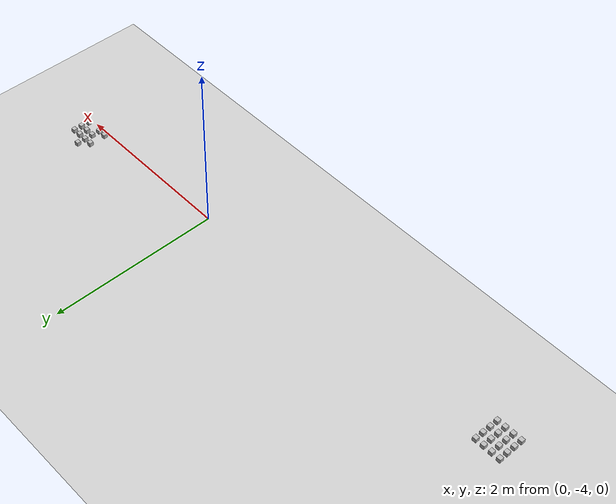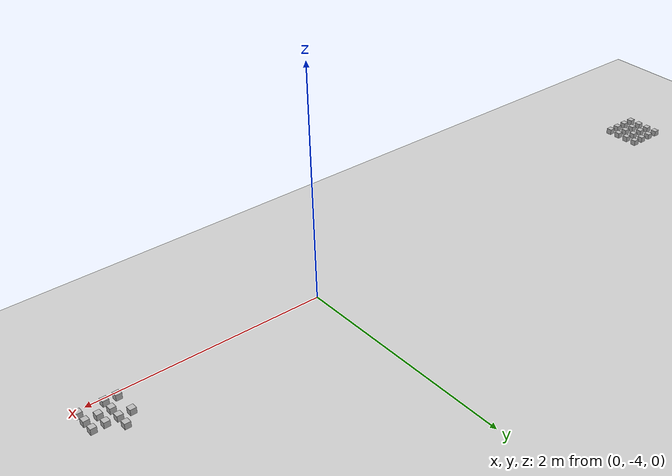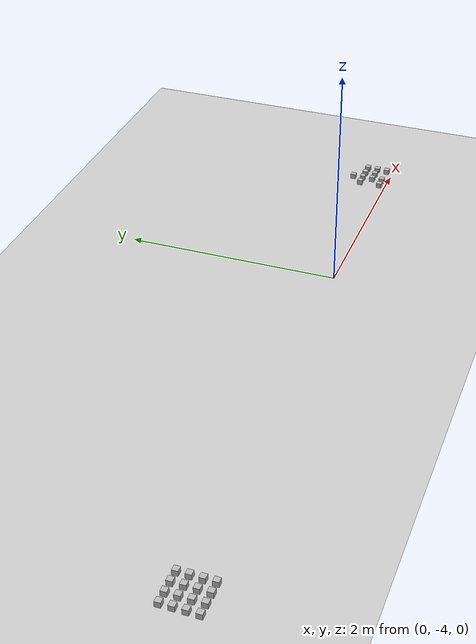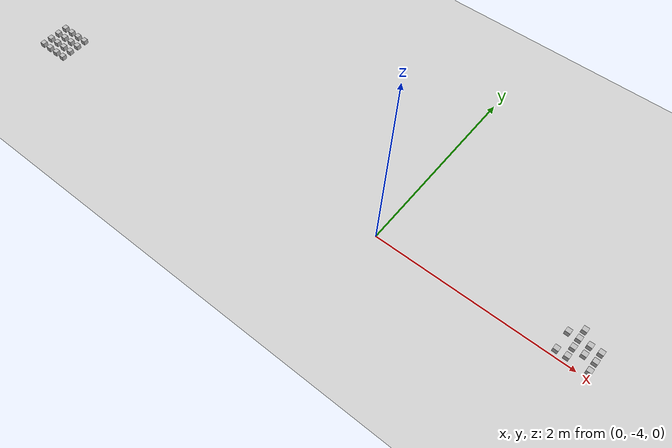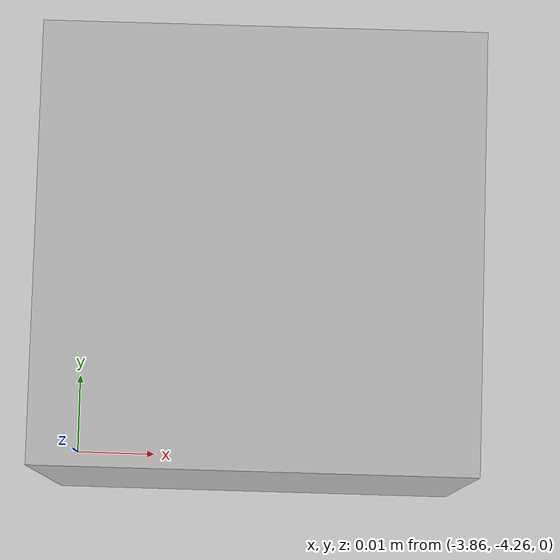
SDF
<sdf version="1.6">
 <world name="default">
  <model name="ground_plane">
   <static>1</static>
   <link name="link">
    <collision name="collision">
     <geometry><plane><normal>0 0 1</normal><size>100 100</size></plane></geometry>
     <surface><friction><ode><mu>100</mu><mu2>50</mu2></ode></friction></surface>
    </collision>
    <visual name="visual">
     <cast_shadows>0</cast_shadows>
     <geometry><plane><normal>0 0 1</normal><size>100 100</size></plane></geometry>
     <material>
      <script><uri>file://media/materials/scripts/gazebo.material</uri><name>Gazebo/Grey</name></script>
     </material>
    </visual>
   </link>
  </model>
  <light name="sun" type="directional">
   <pose>0 0 10 0 -0 0</pose>
   <diffuse>0.8 0.8 0.8 1</diffuse>
   <specular>0.1 0.1 0.1 1</specular>
   <attenuation>
    <range>1000</range>
    <constant>0.9</constant>
    <linear>0.01</linear>
    <quadratic>0.001</quadratic>
   </attenuation>
   <direction>-0.5 0.5 -1</direction>
  </light>
  <plugin name="SetupWorld" filename="libgazebo_plugins.so"/>
  <gravity>0 0 -9.8</gravity>
  <magnetic_field>6e-06 2.3e-05 -4.2e-05</magnetic_field>
  <atmosphere type="adiabatic"/>
  <physics name="default_physics" default="0" type="ode">
   <max_step_size>0.001</max_step_size>
   <real_time_factor>1</real_time_factor>
   <real_time_update_rate>1000</real_time_update_rate>
  </physics>
  <scene><ambient>0.4 0.4 0.4 1</ambient><background>0.7 0.7 0.7 1</background><shadows>1</shadows></scene>
  <spherical_coordinates>
   <surface_model>EARTH_WGS84</surface_model>
   <latitude_deg>0</latitude_deg>
   <longitude_deg>0</longitude_deg>
   <elevation>0</elevation>
   <heading_deg>0</heading_deg>
  </spherical_coordinates>
  <model name="at16">
   <static>0</static>
   <link name="link">
    <inertial>
     <mass>0.01</mass>
     <inertia><ixx>4e-05</ixx><ixy>0</ixy><ixz>0</ixz><iyy>4e-05</iyy><iyz>0</iyz><izz>4e-05</izz></inertia>
    </inertial>
    <visual name="visual">
     <geometry><box><size>0.05 0.05 0.05</size></box></geometry>
     <material>
      <script>
       <uri>model://at0/materials/scripts</uri>
       <uri>model://at0/materials/textures</uri>
       <name>at0/Diffuse</name>
      </script>
     </material>
    </visual>
    <collision name="collision">
     <geometry><box><size>0.05 0.05 0.05</size></box></geometry>
     <surface><friction><ode><mu>0.8</mu><mu2>0.7</mu2></ode></friction></surface>
    </collision>
   </link>
   <pose>-4.13691 -4.33941 0.025 0 -0 0</pose>
  </model>
  <model name="at17">
   <static>0</static>
   <link name="link">
    <inertial>
     <mass>0.01</mass>
     <inertia><ixx>4e-05</ixx><ixy>0</ixy><ixz>0</ixz><iyy>4e-05</iyy><iyz>0</iyz><izz>4e-05</izz></inertia>
    </inertial>
    <visual name="visual">
     <geometry><box><size>0.05 0.05 0.05</size></box></geometry>
     <material>
      <script>
       <uri>model://at0/materials/scripts</uri>
       <uri>model://at0/materials/textures</uri>
       <name>at0/Diffuse</name>
      </script>
     </material>
    </visual>
    <collision name="collision">
     <geometry><box><size>0.05 0.05 0.05</size></box></geometry>
     <surface><friction><ode><mu>0.8</mu><mu2>0.7</mu2></ode></friction></surface>
    </collision>
   </link>
   <pose>-4.03691 -4.33941 0.025 0 -0 0</pose>
  </model>
  <model name="at18">
   <static>0</static>
   <link name="link">
    <inertial>
     <mass>0.01</mass>
     <inertia><ixx>4e-05</ixx><ixy>0</ixy><ixz>0</ixz><iyy>4e-05</iyy><iyz>0</iyz><izz>4e-05</izz></inertia>
    </inertial>
    <visual name="visual">
     <geometry><box><size>0.05 0.05 0.05</size></box></geometry>
     <material>
      <script>
       <uri>model://at0/materials/scripts</uri>
       <uri>model://at0/materials/textures</uri>
       <name>at0/Diffuse</name>
      </script>
     </material>
    </visual>
    <collision name="collision">
     <geometry><box><size>0.05 0.05 0.05</size></box></geometry>
     <surface><friction><ode><mu>0.8</mu><mu2>0.7</mu2></ode></friction></surface>
    </collision>
   </link>
   <pose>-3.93691 -4.33941 0.025 0 -0 0</pose>
  </model>
  <model name="at19">
   <static>0</static>
   <link name="link">
    <inertial>
     <mass>0.01</mass>
     <inertia><ixx>4e-05</ixx><ixy>0</ixy><ixz>0</ixz><iyy>4e-05</iyy><iyz>0</iyz><izz>4e-05</izz></inertia>
    </inertial>
    <visual name="visual">
     <geometry><box><size>0.05 0.05 0.05</size></box></geometry>
     <material>
      <script>
       <uri>model://at0/materials/scripts</uri>
       <uri>model://at0/materials/textures</uri>
       <name>at0/Diffuse</name>
      </script>
     </material>
    </visual>
    <collision name="collision">
     <geometry><box><size>0.05 0.05 0.05</size></box></geometry>
     <surface><friction><ode><mu>0.8</mu><mu2>0.7</mu2></ode></friction></surface>
    </collision>
   </link>
   <pose>-3.83691 -4.33941 0.025 0 -0 0</pose>
  </model>
  <model name="at20">
   <static>0</static>
   <link name="link">
    <inertial>
     <mass>0.01</mass>
     <inertia><ixx>4e-05</ixx><ixy>0</ixy><ixz>0</ixz><iyy>4e-05</iyy><iyz>0</iyz><izz>4e-05</izz></inertia>
    </inertial>
    <visual name="visual">
     <geometry><box><size>0.05 0.05 0.05</size></box></geometry>
     <material>
      <script>
       <uri>model://at0/materials/scripts</uri>
       <uri>model://at0/materials/textures</uri>
       <name>at0/Diffuse</name>
      </script>
     </material>
    </visual>
    <collision name="collision">
     <geometry><box><size>0.05 0.05 0.05</size></box></geometry>
     <surface><friction><ode><mu>0.8</mu><mu2>0.7</mu2></ode></friction></surface>
    </collision>
   </link>
   <pose>-4.13691 -4.23941 0.025 0 -0 0</pose>
  </model>
  <model name="at21">
   <static>0</static>
   <link name="link">
    <inertial>
     <mass>0.01</mass>
     <inertia><ixx>4e-05</ixx><ixy>0</ixy><ixz>0</ixz><iyy>4e-05</iyy><iyz>0</iyz><izz>4e-05</izz></inertia>
    </inertial>
    <visual name="visual">
     <geometry><box><size>0.05 0.05 0.05</size></box></geometry>
     <material>
      <script>
       <uri>model://at0/materials/scripts</uri>
       <uri>model://at0/materials/textures</uri>
       <name>at0/Diffuse</name>
      </script>
     </material>
    </visual>
    <collision name="collision">
     <geometry><box><size>0.05 0.05 0.05</size></box></geometry>
     <surface><friction><ode><mu>0.8</mu><mu2>0.7</mu2></ode></friction></surface>
    </collision>
   </link>
   <pose>-4.03691 -4.23941 0.025 0 -0 0</pose>
  </model>
  <model name="at22">
   <static>0</static>
   <link name="link">
    <inertial>
     <mass>0.01</mass>
     <inertia><ixx>4e-05</ixx><ixy>0</ixy><ixz>0</ixz><iyy>4e-05</iyy><iyz>0</iyz><izz>4e-05</izz></inertia>
    </inertial>
    <visual name="visual">
     <geometry><box><size>0.05 0.05 0.05</size></box></geometry>
     <material>
      <script>
       <uri>model://at0/materials/scripts</uri>
       <uri>model://at0/materials/textures</uri>
       <name>at0/Diffuse</name>
      </script>
     </material>
    </visual>
    <collision name="collision">
     <geometry><box><size>0.05 0.05 0.05</size></box></geometry>
     <surface><friction><ode><mu>0.8</mu><mu2>0.7</mu2></ode></friction></surface>
    </collision>
   </link>
   <pose>-3.93691 -4.23941 0.025 0 -0 0</pose>
  </model>
  <model name="at23">
   <static>0</static>
   <link name="link">
    <inertial>
     <mass>0.01</mass>
     <inertia><ixx>4e-05</ixx><ixy>0</ixy><ixz>0</ixz><iyy>4e-05</iyy><iyz>0</iyz><izz>4e-05</izz></inertia>
    </inertial>
    <visual name="visual">
     <geometry><box><size>0.05 0.05 0.05</size></box></geometry>
     <material>
      <script>
       <uri>model://at0/materials/scripts</uri>
       <uri>model://at0/materials/textures</uri>
       <name>at0/Diffuse</name>
      </script>
     </material>
    </visual>
    <collision name="collision">
     <geometry><box><size>0.05 0.05 0.05</size></box></geometry>
     <surface><friction><ode><mu>0.8</mu><mu2>0.7</mu2></ode></friction></surface>
    </collision>
   </link>
   <pose>-3.83691 -4.23941 0.025 0 -0 0</pose>
  </model>
  <model name="at24">
   <static>0</static>
   <link name="link">
    <inertial>
     <mass>0.01</mass>
     <inertia><ixx>4e-05</ixx><ixy>0</ixy><ixz>0</ixz><iyy>4e-05</iyy><iyz>0</iyz><izz>4e-05</izz></inertia>
    </inertial>
    <visual name="visual">
     <geometry><box><size>0.05 0.05 0.05</size></box></geometry>
     <material>
      <script>
       <uri>model://at0/materials/scripts</uri>
       <uri>model://at0/materials/textures</uri>
       <name>at0/Diffuse</name>
      </script>
     </material>
    </visual>
    <collision name="collision">
     <geometry><box><size>0.05 0.05 0.05</size></box></geometry>
     <surface><friction><ode><mu>0.8</mu><mu2>0.7</mu2></ode></friction></surface>
    </collision>
   </link>
   <pose>-4.13691 -4.13941 0.025 0 -0 0</pose>
  </model>
  <model name="at25">
   <static>0</static>
   <link name="link">
    <inertial>
     <mass>0.01</mass>
     <inertia><ixx>4e-05</ixx><ixy>0</ixy><ixz>0</ixz><iyy>4e-05</iyy><iyz>0</iyz><izz>4e-05</izz></inertia>
    </inertial>
    <visual name="visual">
     <geometry><box><size>0.05 0.05 0.05</size></box></geometry>
     <material>
      <script>
       <uri>model://at0/materials/scripts</uri>
       <uri>model://at0/materials/textures</uri>
       <name>at0/Diffuse</name>
      </script>
     </material>
    </visual>
    <collision name="collision">
     <geometry><box><size>0.05 0.05 0.05</size></box></geometry>
     <surface><friction><ode><mu>0.8</mu><mu2>0.7</mu2></ode></friction></surface>
    </collision>
   </link>
   <pose>-4.03691 -4.13941 0.025 0 -0 0</pose>
  </model>
  <model name="at26">
   <static>0</static>
   <link name="link">
    <inertial>
     <mass>0.01</mass>
     <inertia><ixx>4e-05</ixx><ixy>0</ixy><ixz>0</ixz><iyy>4e-05</iyy><iyz>0</iyz><izz>4e-05</izz></inertia>
    </inertial>
    <visual name="visual">
     <geometry><box><size>0.05 0.05 0.05</size></box></geometry>
     <material>
      <script>
       <uri>model://at0/materials/scripts</uri>
       <uri>model://at0/materials/textures</uri>
       <name>at0/Diffuse</name>
      </script>
     </material>
    </visual>
    <collision name="collision">
     <geometry><box><size>0.05 0.05 0.05</size></box></geometry>
     <surface><friction><ode><mu>0.8</mu><mu2>0.7</mu2></ode></friction></surface>
    </collision>
   </link>
   <pose>-3.93691 -4.13941 0.025 0 -0 0</pose>
  </model>
  <model name="at27">
   <static>0</static>
   <link name="link">
    <inertial>
     <mass>0.01</mass>
     <inertia><ixx>4e-05</ixx><ixy>0</ixy><ixz>0</ixz><iyy>4e-05</iyy><iyz>0</iyz><izz>4e-05</izz></inertia>
    </inertial>
    <visual name="visual">
     <geometry><box><size>0.05 0.05 0.05</size></box></geometry>
     <material>
      <script>
       <uri>model://at0/materials/scripts</uri>
       <uri>model://at0/materials/textures</uri>
       <name>at0/Diffuse</name>
      </script>
     </material>
    </visual>
    <collision name="collision">
     <geometry><box><size>0.05 0.05 0.05</size></box></geometry>
     <surface><friction><ode><mu>0.8</mu><mu2>0.7</mu2></ode></friction></surface>
    </collision>
   </link>
   <pose>-3.83691 -4.13941 0.025 0 -0 0</pose>
  </model>
  <model name="at28">
   <static>0</static>
   <link name="link">
    <inertial>
     <mass>0.01</mass>
     <inertia><ixx>4e-05</ixx><ixy>0</ixy><ixz>0</ixz><iyy>4e-05</iyy><iyz>0</iyz><izz>4e-05</izz></inertia>
    </inertial>
    <visual name="visual">
     <geometry><box><size>0.05 0.05 0.05</size></box></geometry>
     <material>
      <script>
       <uri>model://at0/materials/scripts</uri>
       <uri>model://at0/materials/textures</uri>
       <name>at0/Diffuse</name>
      </script>
     </material>
    </visual>
    <collision name="collision">
     <geometry><box><size>0.05 0.05 0.05</size></box></geometry>
     <surface><friction><ode><mu>0.8</mu><mu2>0.7</mu2></ode></friction></surface>
    </collision>
   </link>
   <pose>-4.13691 -4.03941 0.025 0 -0 0</pose>
  </model>
  <model name="at29">
   <static>0</static>
   <link name="link">
    <inertial>
     <mass>0.01</mass>
     <inertia><ixx>4e-05</ixx><ixy>0</ixy><ixz>0</ixz><iyy>4e-05</iyy><iyz>0</iyz><izz>4e-05</izz></inertia>
    </inertial>
    <visual name="visual">
     <geometry><box><size>0.05 0.05 0.05</size></box></geometry>
     <material>
      <script>
       <uri>model://at0/materials/scripts</uri>
       <uri>model://at0/materials/textures</uri>
       <name>at0/Diffuse</name>
      </script>
     </material>
    </visual>
    <collision name="collision">
     <geometry><box><size>0.05 0.05 0.05</size></box></geometry>
     <surface><friction><ode><mu>0.8</mu><mu2>0.7</mu2></ode></friction></surface>
    </collision>
   </link>
   <pose>-4.03691 -4.03941 0.025 0 -0 0</pose>
  </model>
  <model name="at30">
   <static>0</static>
   <link name="link">
    <inertial>
     <mass>0.01</mass>
     <inertia><ixx>4e-05</ixx><ixy>0</ixy><ixz>0</ixz><iyy>4e-05</iyy><iyz>0</iyz><izz>4e-05</izz></inertia>
    </inertial>
    <visual name="visual">
     <geometry><box><size>0.05 0.05 0.05</size></box></geometry>
     <material>
      <script>
       <uri>model://at0/materials/scripts</uri>
       <uri>model://at0/materials/textures</uri>
       <name>at0/Diffuse</name>
      </script>
     </material>
    </visual>
    <collision name="collision">
     <geometry><box><size>0.05 0.05 0.05</size></box></geometry>
     <surface><friction><ode><mu>0.8</mu><mu2>0.7</mu2></ode></friction></surface>
    </collision>
   </link>
   <pose>-3.93691 -4.03941 0.025 0 -0 0</pose>
  </model>
  <model name="at31">
   <static>0</static>
   <link name="link">
    <inertial>
     <mass>0.01</mass>
     <inertia><ixx>4e-05</ixx><ixy>0</ixy><ixz>0</ixz><iyy>4e-05</iyy><iyz>0</iyz><izz>4e-05</izz></inertia>
    </inertial>
    <visual name="visual">
     <geometry><box><size>0.05 0.05 0.05</size></box></geometry>
     <material>
      <script>
       <uri>model://at0/materials/scripts</uri>
       <uri>model://at0/materials/textures</uri>
       <name>at0/Diffuse</name>
      </script>
     </material>
    </visual>
    <collision name="collision">
     <geometry><box><size>0.05 0.05 0.05</size></box></geometry>
     <surface><friction><ode><mu>0.8</mu><mu2>0.7</mu2></ode></friction></surface>
    </collision>
   </link>
   <pose>-3.83691 -4.03941 0.025 0 -0 0</pose>
  </model>
  <model name="at48">
   <static>0</static>
   <link name="link">
    <inertial>
     <mass>0.01</mass>
     <inertia><ixx>4e-05</ixx><ixy>0</ixy><ixz>0</ixz><iyy>4e-05</iyy><iyz>0</iyz><izz>4e-05</izz></inertia>
    </inertial>
    <visual name="visual">
     <geometry><box><size>0.05 0.05 0.05</size></box></geometry>
     <material>
      <script>
       <uri>model://at0/materials/scripts</uri>
       <uri>model://at0/materials/textures</uri>
       <name>at0/Diffuse</name>
      </script>
     </material>
    </visual>
    <collision name="collision">
     <geometry><box><size>0.05 0.05 0.05</size></box></geometry>
     <surface><friction><ode><mu>0.8</mu><mu2>0.7</mu2></ode></friction></surface>
    </collision>
   </link>
   <pose>1.77506 -3.94063 0.025 0 -0 0</pose>
  </model>
  <model name="at49">
   <static>0</static>
   <link name="link">
    <inertial>
     <mass>0.01</mass>
     <inertia><ixx>4e-05</ixx><ixy>0</ixy><ixz>0</ixz><iyy>4e-05</iyy><iyz>0</iyz><izz>4e-05</izz></inertia>
    </inertial>
    <visual name="visual">
     <geometry><box><size>0.05 0.05 0.05</size></box></geometry>
     <material>
      <script>
       <uri>model://at0/materials/scripts</uri>
       <uri>model://at0/materials/textures</uri>
       <name>at0/Diffuse</name>
      </script>
     </material>
    </visual>
    <collision name="collision">
     <geometry><box><size>0.05 0.05 0.05</size></box></geometry>
     <surface><friction><ode><mu>0.8</mu><mu2>0.7</mu2></ode></friction></surface>
    </collision>
   </link>
   <pose>1.87506 -3.94063 0.025 0 -0 0</pose>
  </model>
  <model name="at51">
   <static>0</static>
   <link name="link">
    <inertial>
     <mass>0.01</mass>
     <inertia><ixx>4e-05</ixx><ixy>0</ixy><ixz>0</ixz><iyy>4e-05</iyy><iyz>0</iyz><izz>4e-05</izz></inertia>
    </inertial>
    <visual name="visual">
     <geometry><box><size>0.05 0.05 0.05</size></box></geometry>
     <material>
      <script>
       <uri>model://at0/materials/scripts</uri>
       <uri>model://at0/materials/textures</uri>
       <name>at0/Diffuse</name>
      </script>
     </material>
    </visual>
    <collision name="collision">
     <geometry><box><size>0.05 0.05 0.05</size></box></geometry>
     <surface><friction><ode><mu>0.8</mu><mu2>0.7</mu2></ode></friction></surface>
    </collision>
   </link>
   <pose>2.07506 -3.94063 0.025 0 -0 0</pose>
  </model>
  <model name="at53">
   <static>0</static>
   <link name="link">
    <inertial>
     <mass>0.01</mass>
     <inertia><ixx>4e-05</ixx><ixy>0</ixy><ixz>0</ixz><iyy>4e-05</iyy><iyz>0</iyz><izz>4e-05</izz></inertia>
    </inertial>
    <visual name="visual">
     <geometry><box><size>0.05 0.05 0.05</size></box></geometry>
     <material>
      <script>
       <uri>model://at0/materials/scripts</uri>
       <uri>model://at0/materials/textures</uri>
       <name>at0/Diffuse</name>
      </script>
     </material>
    </visual>
    <collision name="collision">
     <geometry><box><size>0.05 0.05 0.05</size></box></geometry>
     <surface><friction><ode><mu>0.8</mu><mu2>0.7</mu2></ode></friction></surface>
    </collision>
   </link>
   <pose>1.87506 -3.84063 0.025 0 -0 0</pose>
  </model>
  <model name="at54">
   <static>0</static>
   <link name="link">
    <inertial>
     <mass>0.01</mass>
     <inertia><ixx>4e-05</ixx><ixy>0</ixy><ixz>0</ixz><iyy>4e-05</iyy><iyz>0</iyz><izz>4e-05</izz></inertia>
    </inertial>
    <visual name="visual">
     <geometry><box><size>0.05 0.05 0.05</size></box></geometry>
     <material>
      <script>
       <uri>model://at0/materials/scripts</uri>
       <uri>model://at0/materials/textures</uri>
       <name>at0/Diffuse</name>
      </script>
     </material>
    </visual>
    <collision name="collision">
     <geometry><box><size>0.05 0.05 0.05</size></box></geometry>
     <surface><friction><ode><mu>0.8</mu><mu2>0.7</mu2></ode></friction></surface>
    </collision>
   </link>
   <pose>1.97506 -3.84063 0.025 0 -0 0</pose>
  </model>
  <model name="at55">
   <static>0</static>
   <link name="link">
    <inertial>
     <mass>0.01</mass>
     <inertia><ixx>4e-05</ixx><ixy>0</ixy><ixz>0</ixz><iyy>4e-05</iyy><iyz>0</iyz><izz>4e-05</izz></inertia>
    </inertial>
    <visual name="visual">
     <geometry><box><size>0.05 0.05 0.05</size></box></geometry>
     <material>
      <script>
       <uri>model://at0/materials/scripts</uri>
       <uri>model://at0/materials/textures</uri>
       <name>at0/Diffuse</name>
      </script>
     </material>
    </visual>
    <collision name="collision">
     <geometry><box><size>0.05 0.05 0.05</size></box></geometry>
     <surface><friction><ode><mu>0.8</mu><mu2>0.7</mu2></ode></friction></surface>
    </collision>
   </link>
   <pose>2.07506 -3.84063 0.025 0 -0 0</pose>
  </model>
  <model name="at56">
   <static>0</static>
   <link name="link">
    <inertial>
     <mass>0.01</mass>
     <inertia><ixx>4e-05</ixx><ixy>0</ixy><ixz>0</ixz><iyy>4e-05</iyy><iyz>0</iyz><izz>4e-05</izz></inertia>
    </inertial>
    <visual name="visual">
     <geometry><box><size>0.05 0.05 0.05</size></box></geometry>
     <material>
      <script>
       <uri>model://at0/materials/scripts</uri>
       <uri>model://at0/materials/textures</uri>
       <name>at0/Diffuse</name>
      </script>
     </material>
    </visual>
    <collision name="collision">
     <geometry><box><size>0.05 0.05 0.05</size></box></geometry>
     <surface><friction><ode><mu>0.8</mu><mu2>0.7</mu2></ode></friction></surface>
    </collision>
   </link>
   <pose>1.77506 -3.74063 0.025 0 -0 0</pose>
  </model>
  <model name="at57">
   <static>0</static>
   <link name="link">
    <inertial>
     <mass>0.01</mass>
     <inertia><ixx>4e-05</ixx><ixy>0</ixy><ixz>0</ixz><iyy>4e-05</iyy><iyz>0</iyz><izz>4e-05</izz></inertia>
    </inertial>
    <visual name="visual">
     <geometry><box><size>0.05 0.05 0.05</size></box></geometry>
     <material>
      <script>
       <uri>model://at0/materials/scripts</uri>
       <uri>model://at0/materials/textures</uri>
       <name>at0/Diffuse</name>
      </script>
     </material>
    </visual>
    <collision name="collision">
     <geometry><box><size>0.05 0.05 0.05</size></box></geometry>
     <surface><friction><ode><mu>0.8</mu><mu2>0.7</mu2></ode></friction></surface>
    </collision>
   </link>
   <pose>1.87506 -3.74063 0.025 0 -0 0</pose>
  </model>
  <model name="at58">
   <static>0</static>
   <link name="link">
    <inertial>
     <mass>0.01</mass>
     <inertia><ixx>4e-05</ixx><ixy>0</ixy><ixz>0</ixz><iyy>4e-05</iyy><iyz>0</iyz><izz>4e-05</izz></inertia>
    </inertial>
    <visual name="visual">
     <geometry><box><size>0.05 0.05 0.05</size></box></geometry>
     <material>
      <script>
       <uri>model://at0/materials/scripts</uri>
       <uri>model://at0/materials/textures</uri>
       <name>at0/Diffuse</name>
      </script>
     </material>
    </visual>
    <collision name="collision">
     <geometry><box><size>0.05 0.05 0.05</size></box></geometry>
     <surface><friction><ode><mu>0.8</mu><mu2>0.7</mu2></ode></friction></surface>
    </collision>
   </link>
   <pose>1.97506 -3.74063 0.025 0 -0 0</pose>
  </model>
  <model name="at59">
   <static>0</static>
   <link name="link">
    <inertial>
     <mass>0.01</mass>
     <inertia><ixx>4e-05</ixx><ixy>0</ixy><ixz>0</ixz><iyy>4e-05</iyy><iyz>0</iyz><izz>4e-05</izz></inertia>
    </inertial>
    <visual name="visual">
     <geometry><box><size>0.05 0.05 0.05</size></box></geometry>
     <material>
      <script>
       <uri>model://at0/materials/scripts</uri>
       <uri>model://at0/materials/textures</uri>
       <name>at0/Diffuse</name>
      </script>
     </material>
    </visual>
    <collision name="collision">
     <geometry><box><size>0.05 0.05 0.05</size></box></geometry>
     <surface><friction><ode><mu>0.8</mu><mu2>0.7</mu2></ode></friction></surface>
    </collision>
   </link>
   <pose>2.07506 -3.74063 0.025 0 -0 0</pose>
  </model>
  <model name="at61">
   <static>0</static>
   <link name="link">
    <inertial>
     <mass>0.01</mass>
     <inertia><ixx>4e-05</ixx><ixy>0</ixy><ixz>0</ixz><iyy>4e-05</iyy><iyz>0</iyz><izz>4e-05</izz></inertia>
    </inertial>
    <visual name="visual">
     <geometry><box><size>0.05 0.05 0.05</size></box></geometry>
     <material>
      <script>
       <uri>model://at0/materials/scripts</uri>
       <uri>model://at0/materials/textures</uri>
       <name>at0/Diffuse</name>
      </script>
     </material>
    </visual>
    <collision name="collision">
     <geometry><box><size>0.05 0.05 0.05</size></box></geometry>
     <surface><friction><ode><mu>0.8</mu><mu2>0.7</mu2></ode></friction></surface>
    </collision>
   </link>
   <pose>1.87506 -3.64063 0.025 0 -0 0</pose>
  </model>
 </world>
</sdf>
